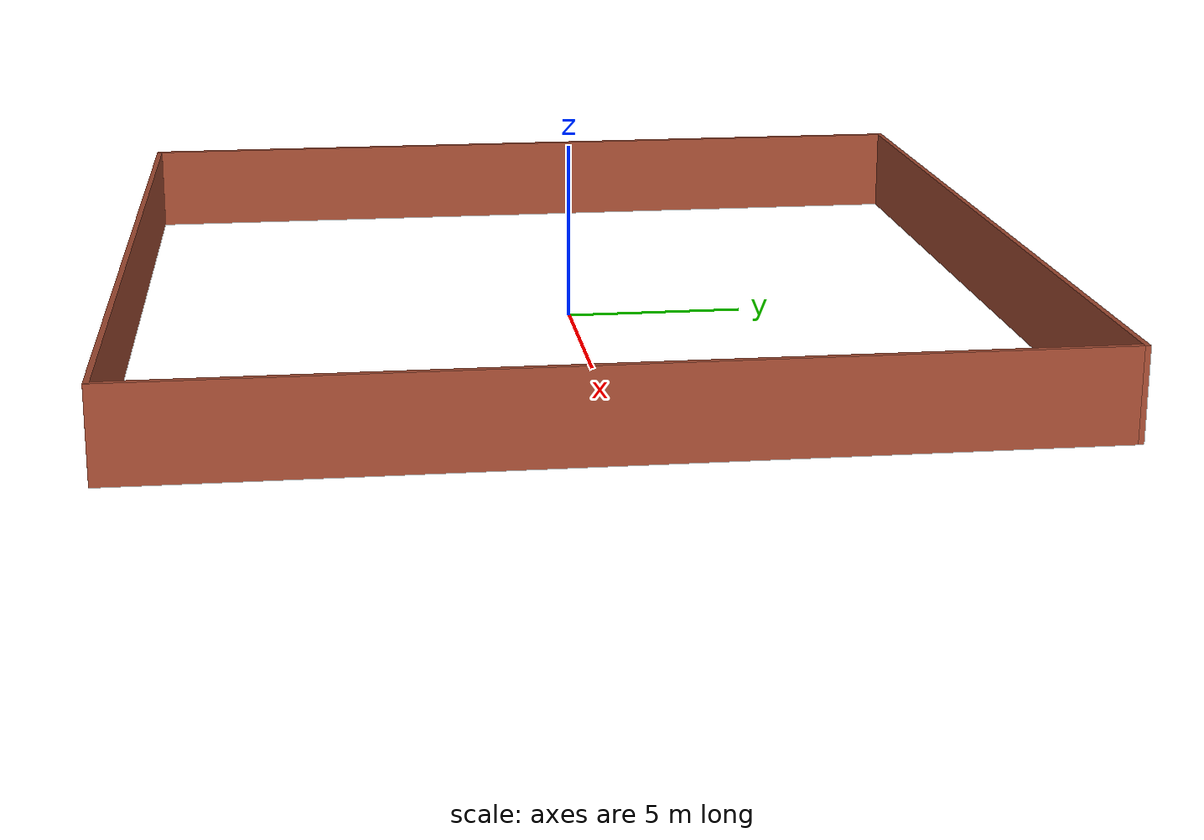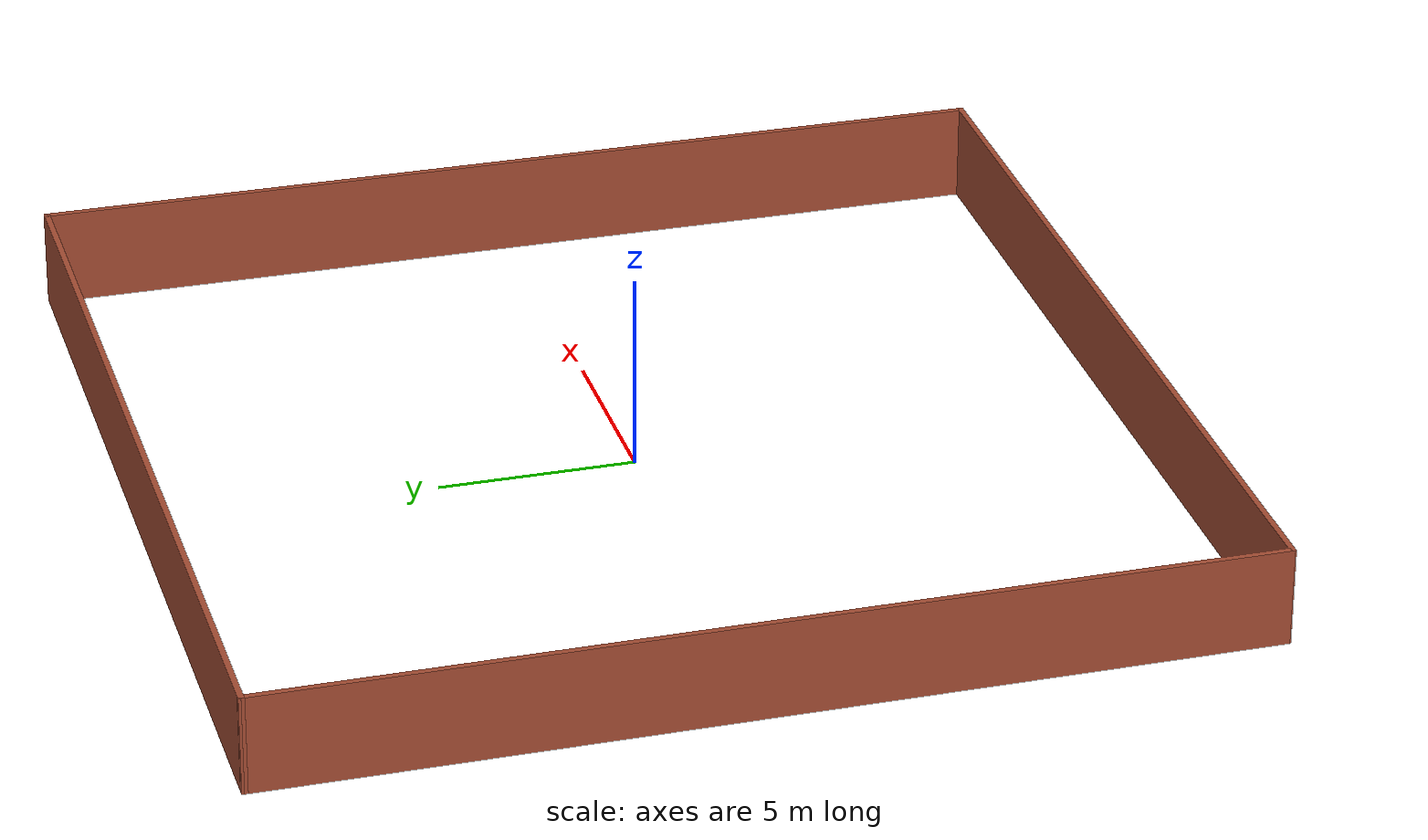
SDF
<?xml version='1.0'?>
<sdf version='1.7'>
  <model name='room'>
    <pose>-0.0005 -0 0 0 -0 0</pose>
    <link name='Wall_0'>
      <collision name='Wall_0_Collision'>
        <geometry>
          <box>
            <size>25 0.15 2.5</size>
          </box>
        </geometry>
        <pose>0 0 1.25 0 -0 0</pose>
      </collision>
      <visual name='Wall_0_Visual'>
        <pose>0 0 1.25 0 -0 0</pose>
        <geometry>
          <box>
            <size>25 0.15 2.5</size>
          </box>
        </geometry>
        <material>
          <script>
            <uri>file://media/materials/scripts/gazebo.material</uri>
            <name>Gazebo/Bricks</name>
          </script>
          <ambient>0.760784 0.662745 0.627451 1</ambient>
        </material>
        <meta>
          <layer>0</layer>
        </meta>
      </visual>
      <pose>-0.0745 -12.425 0 0 -0 -0.006036</pose>
    </link>
    <link name='Wall_2'>
      <collision name='Wall_2_Collision'>
        <geometry>
          <box>
            <size>25 0.15 2.5</size>
          </box>
        </geometry>
        <pose>0 0 1.25 0 -0 0</pose>
      </collision>
      <visual name='Wall_2_Visual'>
        <pose>0 0 1.25 0 -0 0</pose>
        <geometry>
          <box>
            <size>25 0.15 2.5</size>
          </box>
        </geometry>
        <material>
          <script>
            <uri>file://media/materials/scripts/gazebo.material</uri>
            <name>Gazebo/Bricks</name>
          </script>
          <ambient>0.760784 0.662745 0.627451 1</ambient>
        </material>
        <meta>
          <layer>0</layer>
        </meta>
      </visual>
      <pose>12.425 -0.075 0 0 -0 1.5648</pose>
    </link>
    <link name='Wall_3'>
      <collision name='Wall_3_Collision'>
        <geometry>
          <box>
            <size>25.1495 0.15 2.5</size>
          </box>
        </geometry>
        <pose>0 0 1.25 0 -0 0</pose>
      </collision>
      <visual name='Wall_3_Visual'>
        <pose>0 0 1.25 0 -0 0</pose>
        <geometry>
          <box>
            <size>25.1495 0.15 2.5</size>
          </box>
        </geometry>
        <material>
          <script>
            <uri>file://media/materials/scripts/gazebo.material</uri>
            <name>Gazebo/Bricks</name>
          </script>
          <ambient>0.760784 0.662745 0.627451 1</ambient>
        </material>
        <meta>
          <layer>0</layer>
        </meta>
      </visual>
      <pose>-0 12.425 0 0 -0 3.13559</pose>
    </link>
    <link name='Wall_4'>
      <collision name='Wall_4_Collision'>
        <geometry>
          <box>
            <size>25 0.15 2.5</size>
          </box>
        </geometry>
        <pose>0 0 1.25 0 -0 0</pose>
      </collision>
      <visual name='Wall_4_Visual'>
        <pose>0 0 1.25 0 -0 0</pose>
        <geometry>
          <box>
            <size>25 0.15 2.5</size>
          </box>
        </geometry>
        <material>
          <script>
            <uri>file://media/materials/scripts/gazebo.material</uri>
            <name>Gazebo/Bricks</name>
          </script>
          <ambient>0.760784 0.662745 0.627451 1</ambient>
        </material>
        <meta>
          <layer>0</layer>
        </meta>
      </visual>
      <pose>-12.4995 0.075 0 0 -0 -1.5708</pose>
    </link>
    <static>1</static>
  </model>
</sdf>
